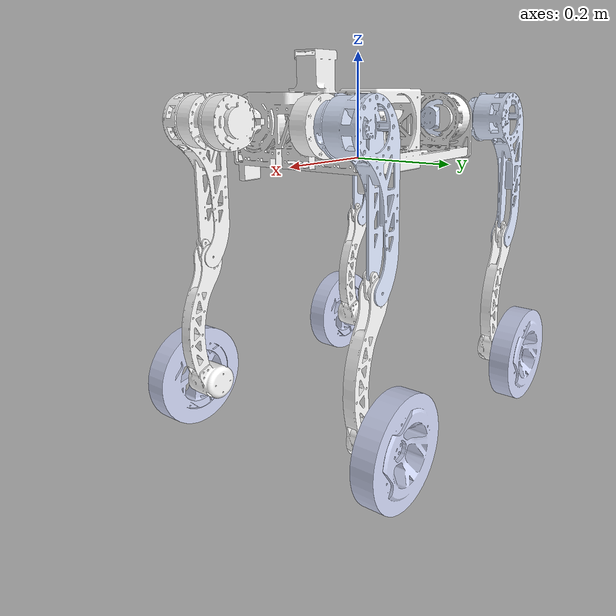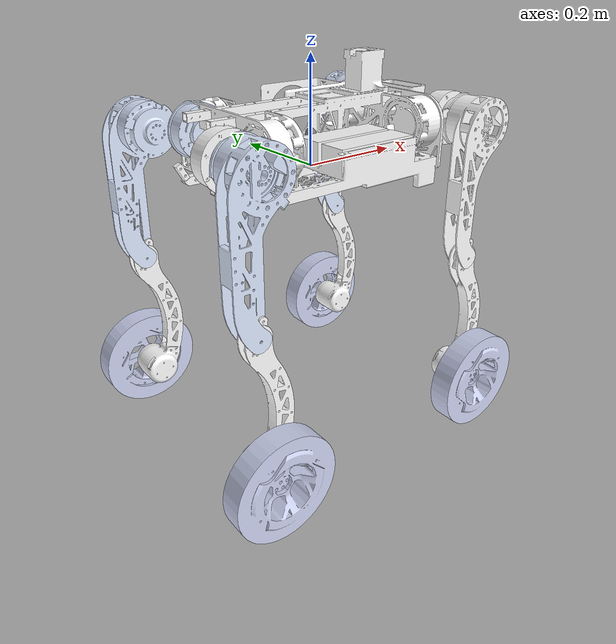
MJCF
<mujoco model="firedog2_2">
  <compiler angle="radian" autolimits="true" />
  <option timestep="0.002" gravity="0 0 -9.81" />
  <asset>
    <mesh name="LF" file="../meshes/LF.STL" />
    <mesh name="LF1" file="../meshes/LF1.STL" />
    <mesh name="LF2" file="../meshes/LF2.STL" />
    <mesh name="LF3" file="../meshes/LF3.STL" />
    <mesh name="LR" file="../meshes/LR.STL" />
    <mesh name="LR1" file="../meshes/LR1.STL" />
    <mesh name="LR2" file="../meshes/LR2.STL" />
    <mesh name="LR3" file="../meshes/LR3.STL" />
    <mesh name="RF" file="../meshes/RF.STL" />
    <mesh name="RF1" file="../meshes/RF1.STL" />
    <mesh name="RF2" file="../meshes/RF2.STL" />
    <mesh name="RF3" file="../meshes/RF3.STL" />
    <mesh name="RR" file="../meshes/RR.STL" />
    <mesh name="RR1" file="../meshes/RR1.STL" />
    <mesh name="RR2" file="../meshes/RR2.STL" />
    <mesh name="RR3" file="../meshes/RR3.STL" />
    <mesh name="base_link" file="../meshes/base_link.STL" />
  </asset>
  <worldbody>
    <body name="base_link">
      <freejoint name="base_free" />
      <inertial pos="0.0079 -0.0097 0.0600" mass="6.4660" fullinertia="0.0670 0.1464 0.1959 0.0013 0.0002 -0.0009" />
      <geom name="base_link_visual" type="mesh" mesh="base_link" contype="0" conaffinity="0" rgba="1 1 1 1" />
      <geom name="base_link_collision" type="mesh" mesh="base_link" group="0" contype="1" conaffinity="1" rgba="1 1 1 1" />
      <site name="imu" pos="0 0 0.06" size="0.01" type="sphere" />
      <body name="RF" pos="0.184 -0.1 0.075" euler="0 0 0">
        <inertial pos="0.0589 0.0026 0.0000" mass="0.9326" fullinertia="0.0006 0.0011 0.0007 0.0000 0.0000 0.0000" />
        <geom name="RF_visual" type="mesh" mesh="RF" contype="0" conaffinity="0" rgba="1 1 1 1" />
        <geom name="RF_collision" type="mesh" mesh="RF" group="0" contype="1" conaffinity="1" rgba="1 1 1 1" />
        <joint name="RF_joint" type="hinge" axis="1 0 0" damping="0.2" frictionloss="0.01" range="-3.1416 3.1416" />
        <body name="RF1" pos="0.0611 -0.016359 9.5117E-05" euler="0 0 0">
          <inertial pos="-0.0042 -0.0480 -0.0165" mass="1.2465" fullinertia="0.0043 0.0046 0.0014 -0.0002 -0.0007 -0.0006" />
          <geom name="RF1_visual" type="mesh" mesh="RF1" contype="0" conaffinity="0" rgba="1 1 1 1" />
          <geom name="RF1_collision" type="mesh" mesh="RF1" group="0" contype="1" conaffinity="1" rgba="1 1 1 1" />
          <joint name="RF1_joint" type="hinge" axis="0 -1 0" damping="0.2" frictionloss="0.01" range="-3.1416 3.1416" />
          <body name="RF2" pos="-0.018426 -0.078417 -0.25543" euler="0 0 0">
            <inertial pos="0.0206 0.0004 -0.1718" mass="0.4492" fullinertia="0.0037 0.0039 0.0003 0.0000 -0.0001 0.0000" />
            <geom name="RF2_visual" type="mesh" mesh="RF2" contype="0" conaffinity="0" rgba="1 1 1 1" />
            <geom name="RF2_collision" type="mesh" mesh="RF2" group="0" contype="1" conaffinity="1" rgba="1 1 1 1" />
            <joint name="RF2_joint" type="hinge" axis="0 -1 0" damping="0.2" frictionloss="0.01" range="-3.1416 3.1416" />
            <body name="RF3" pos="0.0049156 -0.0047548 -0.25579" euler="0 0 0">
              <inertial pos="-0.0005 -0.0487 -0.0001" mass="0.6405" fullinertia="0.0017 0.0032 0.0017 0.0000 0.0000 0.0000" />
              <geom name="RF3_visual" type="mesh" mesh="RF3" contype="0" conaffinity="0" rgba="0.79608 0.82353 0.93725 1" />
              <geom name="RF3_collision" type="mesh" mesh="RF3" group="0" contype="1" conaffinity="1" rgba="0.79608 0.82353 0.93725 1" />
              <site name="RF3_foot" pos="0 0 0" size="0.02" type="sphere" rgba="0.2 0.8 0.2 0.8" />
              <joint name="RF3_joint" type="hinge" axis="0 -1 0" damping="0.2" frictionloss="0.01" limited="false" />
            </body>
          </body>
        </body>
      </body>
      <body name="RR" pos="-0.184 -0.1 0.075" euler="0 0 0">
        <inertial pos="-0.0589 0.0026 0.0000" mass="0.9326" fullinertia="0.0006 0.0011 0.0007 0.0000 0.0000 0.0000" />
        <geom name="RR_visual" type="mesh" mesh="RR" contype="0" conaffinity="0" rgba="1 1 1 1" />
        <geom name="RR_collision" type="mesh" mesh="RR" group="0" contype="1" conaffinity="1" rgba="1 1 1 1" />
        <joint name="RR_joint" type="hinge" axis="-1 0 0" damping="0.2" frictionloss="0.01" range="-3.1416 3.1416" />
        <body name="RR1" pos="-0.0611 -0.01639 0" euler="0 0 0">
          <inertial pos="-0.0005 -0.0488 -0.0187" mass="1.3504" fullinertia="0.0044 0.0049 0.0017 -0.0001 -0.0005 -0.0007" />
          <geom name="RR1_visual" type="mesh" mesh="RR1" contype="0" conaffinity="0" rgba="0.86667 0.9098 1 1" />
          <geom name="RR1_collision" type="mesh" mesh="RR1" group="0" contype="1" conaffinity="1" rgba="0.86667 0.9098 1 1" />
          <joint name="RR1_joint" type="hinge" axis="0 -1 0" damping="0.2" frictionloss="0.01" range="-3.1416 3.1416" />
          <body name="RR2" pos="-0.019158 -0.078386 -0.25528" euler="0 0 0">
            <inertial pos="0.0213 0.0004 -0.1719" mass="0.4492" fullinertia="0.0037 0.0039 0.0003 0.0000 -0.0001 0.0000" />
            <geom name="RR2_visual" type="mesh" mesh="RR2" contype="0" conaffinity="0" rgba="1 1 1 1" />
            <geom name="RR2_collision" type="mesh" mesh="RR2" group="0" contype="1" conaffinity="1" rgba="1 1 1 1" />
            <joint name="RR2_joint" type="hinge" axis="0 -1 0" damping="0.2" frictionloss="0.01" range="-3.1416 3.1416" />
            <body name="RR3" pos="0.0056469 -0.0047857 -0.25594" euler="0 0 0">
              <inertial pos="-0.0005 -0.0487 -0.0001" mass="0.6405" fullinertia="0.0017 0.0032 0.0017 0.0000 0.0000 0.0000" />
              <geom name="RR3_visual" type="mesh" mesh="RR3" contype="0" conaffinity="0" rgba="0.79608 0.82353 0.93725 1" />
              <geom name="RR3_collision" type="mesh" mesh="RR3" group="0" contype="1" conaffinity="1" rgba="0.79608 0.82353 0.93725 1" />
              <site name="RR3_foot" pos="0 0 0" size="0.02" type="sphere" rgba="0.2 0.8 0.2 0.8" />
              <joint name="RR3_joint" type="hinge" axis="0 -1 0" damping="0.2" frictionloss="0.01" limited="false" />
            </body>
          </body>
        </body>
      </body>
      <body name="LR" pos="-0.184 0.1 0.075" euler="0 0 0">
        <inertial pos="-0.0589 -0.0026 0.0000" mass="0.9326" fullinertia="0.0006 0.0011 0.0007 0.0000 0.0000 0.0000" />
        <geom name="LR_visual" type="mesh" mesh="LR" contype="0" conaffinity="0" rgba="0.86667 0.9098 1 1" />
        <geom name="LR_collision" type="mesh" mesh="LR" group="0" contype="1" conaffinity="1" rgba="0.86667 0.9098 1 1" />
        <joint name="LR_joint" type="hinge" axis="-1 0 0" damping="0.2" frictionloss="0.01" range="-3.1416 3.1416" />
        <body name="LR1" pos="-0.0611 0.01639 0" euler="0 0 0">
          <inertial pos="-0.0044 0.0478 -0.0165" mass="1.2369" fullinertia="0.0043 0.0046 0.0014 0.0002 -0.0007 0.0006" />
          <geom name="LR1_visual" type="mesh" mesh="LR1" contype="0" conaffinity="0" rgba="0.86667 0.9098 1 1" />
          <geom name="LR1_collision" type="mesh" mesh="LR1" group="0" contype="1" conaffinity="1" rgba="0.86667 0.9098 1 1" />
          <joint name="LR1_joint" type="hinge" axis="0 1 0" damping="0.2" frictionloss="0.01" range="-3.1416 3.1416" />
          <body name="LR2" pos="-0.019158 0.078386 -0.25528" euler="0 0 0">
            <inertial pos="0.0213 -0.0004 -0.1719" mass="0.4492" fullinertia="0.0037 0.0039 0.0003 0.0000 -0.0001 0.0000" />
            <geom name="LR2_visual" type="mesh" mesh="LR2" contype="0" conaffinity="0" rgba="1 1 1 1" />
            <geom name="LR2_collision" type="mesh" mesh="LR2" group="0" contype="1" conaffinity="1" rgba="1 1 1 1" />
            <joint name="LR2_joint" type="hinge" axis="0 1 0" damping="0.2" frictionloss="0.01" range="-3.1416 3.1416" />
            <body name="LR3" pos="0.0056469 0.0047857 -0.25594" euler="0 0 0">
              <inertial pos="-0.0001 0.0487 -0.0005" mass="0.6405" fullinertia="0.0017 0.0032 0.0017 0.0000 0.0000 0.0000" />
              <geom name="LR3_visual" type="mesh" mesh="LR3" contype="0" conaffinity="0" rgba="0.79608 0.82353 0.93725 1" />
              <geom name="LR3_collision" type="mesh" mesh="LR3" group="0" contype="1" conaffinity="1" rgba="0.79608 0.82353 0.93725 1" />
              <site name="LR3_foot" pos="0 0 0" size="0.02" type="sphere" rgba="0.2 0.8 0.2 0.8" />
              <joint name="LR3_joint" type="hinge" axis="0 1 0" damping="0.2" frictionloss="0.01" limited="false" />
            </body>
          </body>
        </body>
      </body>
      <body name="LF" pos="0.184 0.1 0.075" euler="0 0 0">
        <inertial pos="0.0589 -0.0026 0.0000" mass="0.9326" fullinertia="0.0006 0.0011 0.0007 0.0000 0.0000 0.0000" />
        <geom name="LF_visual" type="mesh" mesh="LF" contype="0" conaffinity="0" rgba="1 1 1 1" />
        <geom name="LF_collision" type="mesh" mesh="LF" group="0" contype="1" conaffinity="1" rgba="1 1 1 1" />
        <joint name="LF_joint" type="hinge" axis="1 0 0" damping="0.2" frictionloss="0.01" range="-3.1416 3.1416" />
        <body name="LF1" pos="0.0611 0.01639 0" euler="0 0 0">
          <inertial pos="-0.0043 0.0478 -0.0165" mass="1.2369" fullinertia="0.0043 0.0046 0.0014 0.0002 -0.0007 0.0006" />
          <geom name="LF1_visual" type="mesh" mesh="LF1" contype="0" conaffinity="0" rgba="0.86667 0.9098 1 1" />
          <geom name="LF1_collision" type="mesh" mesh="LF1" group="0" contype="1" conaffinity="1" rgba="0.86667 0.9098 1 1" />
          <joint name="LF1_joint" type="hinge" axis="0 1 0" damping="0.2" frictionloss="0.01" range="-3.1416 3.1416" />
          <body name="LF2" pos="-0.018426 0.078386 -0.25534" euler="0 0 0">
            <inertial pos="0.0238 -0.0004 -0.1716" mass="0.4492" fullinertia="0.0037 0.0039 0.0003 0.0000 -0.0001 0.0000" />
            <geom name="LF2_visual" type="mesh" mesh="LF2" contype="0" conaffinity="0" rgba="1 1 1 1" />
            <geom name="LF2_collision" type="mesh" mesh="LF2" group="0" contype="1" conaffinity="1" rgba="1 1 1 1" />
            <joint name="LF2_joint" type="hinge" axis="0 1 0" damping="0.2" frictionloss="0.01" range="-3.1416 3.1416" />
            <body name="LF3" pos="0.0093044 0.0047857 -0.25583" euler="0 0 0">
              <inertial pos="-0.0001 0.0487 -0.0005" mass="0.6405" fullinertia="0.0017 0.0032 0.0017 0.0000 0.0000 0.0000" />
              <geom name="LF3_visual" type="mesh" mesh="LF3" contype="0" conaffinity="0" rgba="0.79608 0.82353 0.93725 1" />
              <geom name="LF3_collision" type="mesh" mesh="LF3" group="0" contype="1" conaffinity="1" rgba="0.79608 0.82353 0.93725 1" />
              <site name="LF3_foot" pos="0 0 0" size="0.02" type="sphere" rgba="0.2 0.8 0.2 0.8" />
              <joint name="LF3_joint" type="hinge" axis="0 1 0" damping="0.2" frictionloss="0.01" limited="false" />
            </body>
          </body>
        </body>
      </body>
    </body>
  </worldbody>
  <actuator>
    <position name="act_RF_joint" joint="RF_joint" kp="40" kv="4" ctrlrange="-3.1416 3.1416" forcerange="-40 40" />
    <position name="act_RF1_joint" joint="RF1_joint" kp="40" kv="4" ctrlrange="-3.1416 3.1416" forcerange="-40 40" />
    <position name="act_RF2_joint" joint="RF2_joint" kp="40" kv="4" ctrlrange="-3.1416 3.1416" forcerange="-40 40" />
    <position name="act_RF3_joint" joint="RF3_joint" kp="40" kv="4" ctrlrange="-3.14159265 3.14159265" forcerange="-14 14" />
    <position name="act_RR_joint" joint="RR_joint" kp="40" kv="4" ctrlrange="-3.1416 3.1416" forcerange="-40 40" />
    <position name="act_RR1_joint" joint="RR1_joint" kp="40" kv="4" ctrlrange="-3.1416 3.1416" forcerange="-40 40" />
    <position name="act_RR2_joint" joint="RR2_joint" kp="40" kv="4" ctrlrange="-3.1416 3.1416" forcerange="-40 40" />
    <position name="act_RR3_joint" joint="RR3_joint" kp="40" kv="4" ctrlrange="-3.14159265 3.14159265" forcerange="-14 14" />
    <position name="act_LR_joint" joint="LR_joint" kp="40" kv="4" ctrlrange="-3.1416 3.1416" forcerange="-40 40" />
    <position name="act_LR1_joint" joint="LR1_joint" kp="40" kv="4" ctrlrange="-3.1416 3.1416" forcerange="-40 40" />
    <position name="act_LR2_joint" joint="LR2_joint" kp="40" kv="4" ctrlrange="-3.1416 3.1416" forcerange="-40 40" />
    <position name="act_LR3_joint" joint="LR3_joint" kp="40" kv="4" ctrlrange="-3.14159265 3.14159265" forcerange="-14 14" />
    <position name="act_LF_joint" joint="LF_joint" kp="40" kv="4" ctrlrange="-3.1416 3.1416" forcerange="-40 40" />
    <position name="act_LF1_joint" joint="LF1_joint" kp="40" kv="4" ctrlrange="-3.1416 3.1416" forcerange="-40 40" />
    <position name="act_LF2_joint" joint="LF2_joint" kp="40" kv="4" ctrlrange="-3.1416 3.1416" forcerange="-40 40" />
    <position name="act_LF3_joint" joint="LF3_joint" kp="40" kv="4" ctrlrange="-3.14159265 3.14159265" forcerange="-14 14" />
  </actuator>
  <sensor>
    <jointpos name="sense_RF_joint_position" joint="RF_joint" />
    <jointvel name="sense_RF_joint_velocity" joint="RF_joint" />
    <jointpos name="sense_RF1_joint_position" joint="RF1_joint" />
    <jointvel name="sense_RF1_joint_velocity" joint="RF1_joint" />
    <jointpos name="sense_RF2_joint_position" joint="RF2_joint" />
    <jointvel name="sense_RF2_joint_velocity" joint="RF2_joint" />
    <jointpos name="sense_RF3_joint_position" joint="RF3_joint" />
    <jointvel name="sense_RF3_joint_velocity" joint="RF3_joint" />
    <jointpos name="sense_RR_joint_position" joint="RR_joint" />
    <jointvel name="sense_RR_joint_velocity" joint="RR_joint" />
    <jointpos name="sense_RR1_joint_position" joint="RR1_joint" />
    <jointvel name="sense_RR1_joint_velocity" joint="RR1_joint" />
    <jointpos name="sense_RR2_joint_position" joint="RR2_joint" />
    <jointvel name="sense_RR2_joint_velocity" joint="RR2_joint" />
    <jointpos name="sense_RR3_joint_position" joint="RR3_joint" />
    <jointvel name="sense_RR3_joint_velocity" joint="RR3_joint" />
    <jointpos name="sense_LR_joint_position" joint="LR_joint" />
    <jointvel name="sense_LR_joint_velocity" joint="LR_joint" />
    <jointpos name="sense_LR1_joint_position" joint="LR1_joint" />
    <jointvel name="sense_LR1_joint_velocity" joint="LR1_joint" />
    <jointpos name="sense_LR2_joint_position" joint="LR2_joint" />
    <jointvel name="sense_LR2_joint_velocity" joint="LR2_joint" />
    <jointpos name="sense_LR3_joint_position" joint="LR3_joint" />
    <jointvel name="sense_LR3_joint_velocity" joint="LR3_joint" />
    <jointpos name="sense_LF_joint_position" joint="LF_joint" />
    <jointvel name="sense_LF_joint_velocity" joint="LF_joint" />
    <jointpos name="sense_LF1_joint_position" joint="LF1_joint" />
    <jointvel name="sense_LF1_joint_velocity" joint="LF1_joint" />
    <jointpos name="sense_LF2_joint_position" joint="LF2_joint" />
    <jointvel name="sense_LF2_joint_velocity" joint="LF2_joint" />
    <jointpos name="sense_LF3_joint_position" joint="LF3_joint" />
    <jointvel name="sense_LF3_joint_velocity" joint="LF3_joint" />
    <accelerometer name="imu_accel" site="imu" />
    <gyro name="imu_gyro" site="imu" />
  </sensor>
  <keyframe>
    <key name="default" qpos="0 0 0.55 1 0 0 0 0 0 0 0 0 0 0 0 0 0 0 0 0 0 0 0" ctrl="0 0 0 0 0 0 0 0 0 0 0 0 0 0 0 0" />
  </keyframe>
</mujoco>
